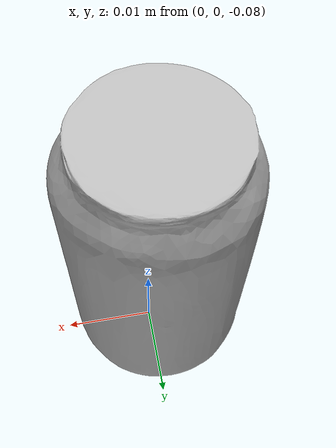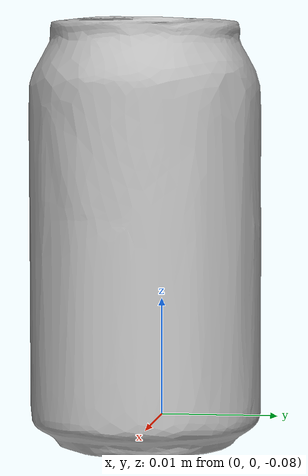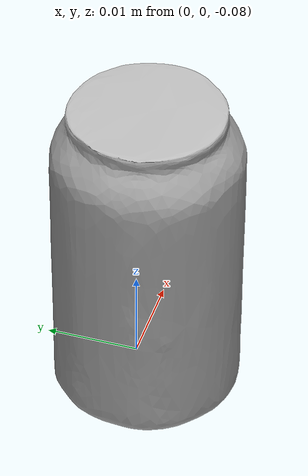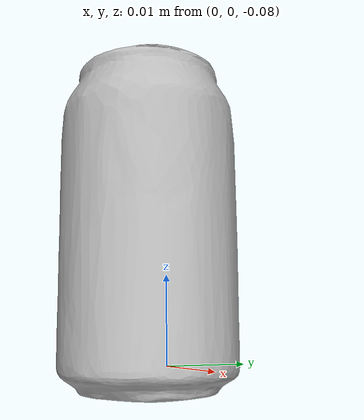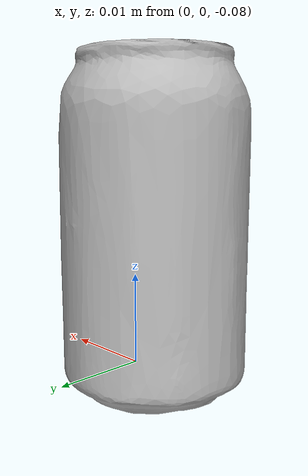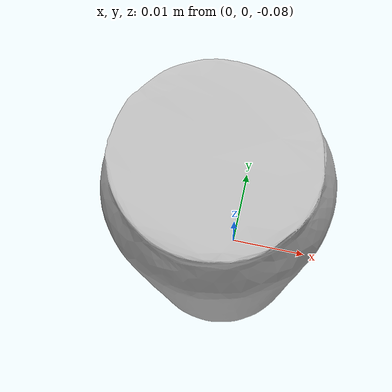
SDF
<?xml version="1.0" ?>
<sdf version="1.4">
  <model name="coke_can">
    <link name="link">
      <inertial>
        <pose>-0.003 -0.0084 0.03 0 0 0</pose>
        <mass>0.0390</mass>
        <inertia>
          <ixx>0.0000522</ixx>
          <ixy>0</ixy>
          <ixz>0</ixz>
          <iyy>0.0000522</iyy>
          <iyz>0</iyz>
          <izz>0.0000171</izz>
        </inertia>
      </inertial>
      <collision name="collision">
        <pose>0 0 -0.138 0 0 0</pose>
        <geometry>
          <mesh>
            <scale>0.3 0.3 0.3</scale>
            <uri>model://coke_can/meshes/coke_can.dae</uri>
          </mesh>
        </geometry>
        <surface>
          <friction>
            <ode>
              <mu>1.0</mu>
              <mu2>1.0</mu2>
            </ode>
          </friction>
          <contact>
            <ode>
              <kp>10000000.0</kp>
              <kd>1.0</kd>
              <min_depth>0.001</min_depth>
              <max_vel>0.1</max_vel>
            </ode>
          </contact>
        </surface>
      </collision>
      <visual name="visual">
        <pose>0 0 -0.138 0 0 0</pose>
        <geometry>
          <mesh>
            <scale>0.3 0.3 0.3</scale>
            <uri>model://coke_can/meshes/coke_can.dae</uri>
          </mesh>
        </geometry>
      </visual>
    </link>
  </model>
</sdf>
